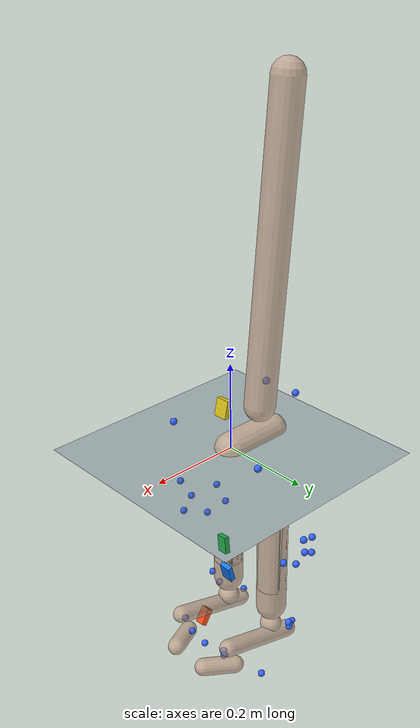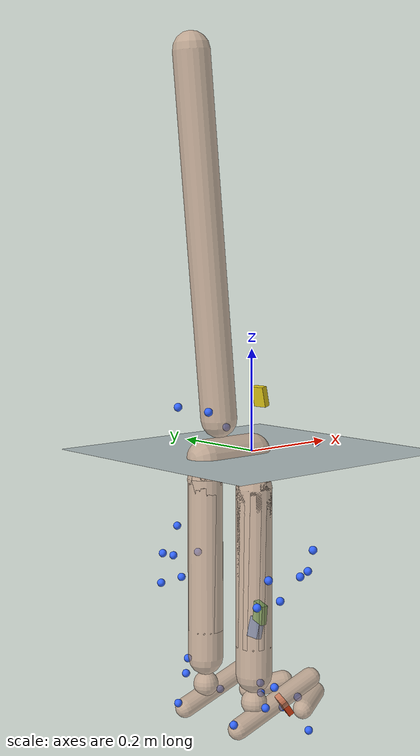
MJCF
<mujoco model="AB28">
  <compiler angle="radian" autolimits="true"/>
  <option timestep="0.005" gravity="0 0 -9.81"><flag contact="disable"/></option>
  <visual><global offwidth="1280" offheight="720"/></visual>
  <default><joint limited="false" damping="0"/><geom contype="0" conaffinity="0"/></default>
  <asset>
    <texture name="grid" type="2d" builtin="checker" rgb1="0.2 0.3 0.4" rgb2="0.3 0.4 0.5" width="512" height="512"/>
    <material name="grid" texture="grid" texrepeat="2 2" texuniform="true"/>
    <material name="skin" rgba="0.8 0.65 0.55 0.7"/>
  </asset>
  <worldbody>
    <light pos="0 0 4" dir="0 0 -1"/>
    <geom name="floor" type="plane" size="0 0 0.05" material="grid"/>
    <body name="pelvis" pos="0 0 0" quat="1 0 0 0">
      <joint name="pelvis_tx" type="slide" axis="1 0 0"/>
      <joint name="pelvis_ty" type="slide" axis="0 0 1"/>
      <joint name="pelvis_tz" type="slide" axis="0 -1 0"/>
      <joint name="pelvis_tilt" type="hinge" axis="0 -1 0"/>
      <joint name="pelvis_list" type="hinge" axis="1 0 0"/>
      <joint name="pelvis_rotation" type="hinge" axis="0 0 1"/>
      <inertial pos="-0.060459257 0 0" mass="10.3627" diaginertia="0.10362728 0.10362728 0.10362728"/>
      <geom type="capsule" fromto="0 0 0 -0.12091851 0 0" size="0.035" material="skin" mass="0"/>
      <site name="m_R_ASIS" pos="0.045494948 -0.13175383 0.027740392" size="0.008" rgba="0.2 0.4 1 1" group="2"/>
      <site name="m_L_ASIS" pos="0.046324617 0.12866539 0.028376879" size="0.008" rgba="0.2 0.4 1 1" group="2"/>
      <site name="m_L_PSIS" pos="-0.1499783 0.044557022 0.094452303" size="0.008" rgba="0.2 0.4 1 1" group="2"/>
      <site name="m_R_PSIS" pos="-0.14623649 -0.040033967 0.092877618" size="0.008" rgba="0.2 0.4 1 1" group="2"/>
      <body name="femur_r" pos="-0.060459257 -0.071405204 -0.056525557" quat="1 0 0 0">
        <joint name="hip_flexion_r" type="hinge" axis="0 -1 0"/>
        <joint name="hip_adduction_r" type="hinge" axis="1 0 0"/>
        <joint name="hip_rotation_r" type="hinge" axis="0 0 1"/>
        <inertial pos="0 0 -0.15340206" mass="8.18442" diaginertia="0.081844173 0.081844173 0.081844173"/>
        <geom type="capsule" fromto="0 0 0 0 0 -0.30680412" size="0.035" material="skin" mass="0"/>
        <site name="m_R_Thigh_Upper" pos="0.05776982 -0.1007557 -0.11153443" size="0.008" rgba="0.2 0.4 1 1" group="2"/>
        <site name="m_R_Thigh_Front" pos="0.082450817 -0.062730026 -0.16361164" size="0.008" rgba="0.2 0.4 1 1" group="2"/>
        <site name="m_R_Thigh_Rear" pos="0.032760071 -0.092161246 -0.15989025" size="0.008" rgba="0.2 0.4 1 1" group="2"/>
        <site name="m_R_Knee_Lat" pos="0.0043800552 -0.05269609 -0.37766919" size="0.008" rgba="0.2 0.4 1 1" group="2"/>
        <site name="imu_thigh" type="box" size="0.02 0.015 0.006" pos="0.05179996 0.051010766 -0.29322556" quat="0.61704131 0.022153068 0.78657314 -0.0084835407" rgba="0.1 0.5 1 1" group="1"/>
        <body name="tibia_r" pos="0 0 0" quat="1 0 0 0">
          <joint name="knee_r_translation1" type="slide" axis="1 0 0"/>
          <joint name="knee_r_translation2" type="slide" axis="0 0 1"/>
          <joint name="knee_angle_r" type="hinge" axis="0 -1 0"/>
          <inertial pos="0 0 -0.18179033" mass="3.26228" diaginertia="0.032622753 0.032622753 0.032622753"/>
          <geom type="capsule" fromto="0 0 0 0 0 -0.36358066" size="0.035" material="skin" mass="0"/>
          <site name="m_R_Shank_Upper" pos="-0.038563113 -0.081535494 -0.15673286" size="0.008" rgba="0.2 0.4 1 1" group="2"/>
          <site name="m_R_Shank_Front" pos="0.006359711 -0.065851534 -0.20740432" size="0.008" rgba="0.2 0.4 1 1" group="2"/>
          <site name="m_R_Shank_Rear" pos="-0.056847113 -0.070249825 -0.20714992" size="0.008" rgba="0.2 0.4 1 1" group="2"/>
          <site name="m_R_Ankle_Lat" pos="-0.012361262 -0.045905728 -0.41584314" size="0.008" rgba="0.2 0.4 1 1" group="2"/>
          <site name="imu_shank" type="box" size="0.02 0.015 0.006" pos="0.024657005 0.0094752569 -0.24911238" quat="0.72532161 0.12686158 0.6765308 0.01098984" rgba="0.1 0.8 0.2 1" group="1"/>
          <body name="talus_r" pos="0 0 -0.41869224" quat="1 0 0 0">
            <joint name="ankle_angle_r" type="hinge" axis="-0.10501355 -0.97912632 -0.17402245"/>
            <inertial pos="0 0 0" mass="0.0879912" diaginertia="0.00087991241 0.00087991241 0.00087991241"/>
            <geom type="sphere" size="0.025" material="skin" mass="0"/>
            <body name="calcn_r" pos="-0.047487489 -0.0077117268 -0.040846836" quat="1 0 0 0">
              <joint name="subtalar_angle_r" type="hinge" axis="0.78717961 0.12094949 0.60474746"/>
              <inertial pos="0.096134135 0 0.028840241" mass="1.09989" diaginertia="0.010998905 0.010998905 0.010998905"/>
              <geom type="capsule" fromto="0 0 0 0.19226827 0 0.057680481" size="0.02" material="skin" mass="0"/>
              <site name="m_R_Heel" pos="-0.01549349 -0.004412373 0.013531303" size="0.008" rgba="0.2 0.4 1 1" group="2"/>
              <site name="m_R_Toe_Lat" pos="0.13555577 -0.054048505 -0.02182151" size="0.008" rgba="0.2 0.4 1 1" group="2"/>
              <site name="m_R_Toe_Med" pos="0.16766697 0.052636777 -0.012152741" size="0.008" rgba="0.2 0.4 1 1" group="2"/>
              <site name="m_R_Toe_Tip" pos="0.18080904 0.022724583 0.013912831" size="0.008" rgba="0.2 0.4 1 1" group="2"/>
              <site name="imu_foot" type="box" size="0.02 0.015 0.006" pos="0.12556253 0.0042107203 0.016345775" quat="0.88451054 0.18351678 0.4282086 -0.024496801" rgba="1 0.3 0.1 1" group="1"/>
              <body name="toes_r" pos="0.17188783 -0.0010382487 -0.0019226827" quat="1 0 0 0">
                <joint name="mtp_angle_r" type="hinge" axis="-0.5809544 -0.81393611 0"/>
                <inertial pos="0.033262411 0.016823474 0.0057680481" mass="0.190589" diaginertia="0.0019058903 0.0019058903 0.0019058903"/>
                <geom type="capsule" fromto="0 0 0 0.066524822 0.033646947 0.011536096" size="0.02" material="skin" mass="0"/>
              </body>
            </body>
          </body>
        </body>
      </body>
      <body name="femur_l" pos="-0.060459257 0.071405204 -0.056525557" quat="1 0 0 0">
        <joint name="hip_flexion_l" type="hinge" axis="0 -1 0"/>
        <joint name="hip_adduction_l" type="hinge" axis="-1 0 0"/>
        <joint name="hip_rotation_l" type="hinge" axis="0 0 -1"/>
        <inertial pos="0 0 -0.15340206" mass="8.18442" diaginertia="0.081844173 0.081844173 0.081844173"/>
        <geom type="capsule" fromto="0 0 0 0 0 -0.30680412" size="0.035" material="skin" mass="0"/>
        <site name="m_L_Thigh_Upper" pos="0.014077366 0.10535352 -0.11509605" size="0.008" rgba="0.2 0.4 1 1" group="2"/>
        <site name="m_L_Thigh_Front" pos="0.04878159 0.081123076 -0.17137662" size="0.008" rgba="0.2 0.4 1 1" group="2"/>
        <site name="m_L_Thigh_Rear" pos="-0.010205452 0.088172336 -0.17017062" size="0.008" rgba="0.2 0.4 1 1" group="2"/>
        <site name="m_L_Knee_Lat" pos="0.0015345106 0.057933929 -0.38101771" size="0.008" rgba="0.2 0.4 1 1" group="2"/>
        <body name="tibia_l" pos="0 0 0" quat="1 0 0 0">
          <joint name="knee_l_translation1" type="slide" axis="1 0 0"/>
          <joint name="knee_l_translation2" type="slide" axis="0 0 1"/>
          <joint name="knee_angle_l" type="hinge" axis="0 -1 0"/>
          <inertial pos="0 0 -0.18179033" mass="3.26228" diaginertia="0.032622753 0.032622753 0.032622753"/>
          <geom type="capsule" fromto="0 0 0 0 0 -0.36358066" size="0.035" material="skin" mass="0"/>
          <site name="m_L_Shank_Upper" pos="-0.048947295 0.073997058 -0.15687193" size="0.008" rgba="0.2 0.4 1 1" group="2"/>
          <site name="m_L_Shank_Front" pos="-0.0060465803 0.067662956 -0.21187034" size="0.008" rgba="0.2 0.4 1 1" group="2"/>
          <site name="m_L_Shank_Rear" pos="-0.062789575 0.062421382 -0.21261774" size="0.008" rgba="0.2 0.4 1 1" group="2"/>
          <site name="m_L_Ankle_Lat" pos="-0.011989957 0.047780272 -0.40711113" size="0.008" rgba="0.2 0.4 1 1" group="2"/>
          <body name="talus_l" pos="0 0 -0.41869224" quat="1 0 0 0">
            <joint name="ankle_angle_l" type="hinge" axis="0.10501355 -0.97912632 0.17402245"/>
            <inertial pos="0 0 0" mass="0.0879912" diaginertia="0.00087991241 0.00087991241 0.00087991241"/>
            <geom type="sphere" size="0.025" material="skin" mass="0"/>
            <body name="calcn_l" pos="-0.047487489 0.0077117268 -0.040846836" quat="1 0 0 0">
              <joint name="subtalar_angle_l" type="hinge" axis="-0.78717961 0.12094949 -0.60474746"/>
              <inertial pos="0.096134135 0 0.028840241" mass="1.09989" diaginertia="0.010998905 0.010998905 0.010998905"/>
              <geom type="capsule" fromto="0 0 0 0.19226827 0 0.057680481" size="0.02" material="skin" mass="0"/>
              <site name="m_L_Heel" pos="-0.016715083 0.001319812 0.012914354" size="0.008" rgba="0.2 0.4 1 1" group="2"/>
              <site name="m_L_Toe_Lat" pos="0.14239711 0.057466211 -0.010759494" size="0.008" rgba="0.2 0.4 1 1" group="2"/>
              <site name="m_L_Toe_Med" pos="0.16497557 -0.04415497 0.0026397667" size="0.008" rgba="0.2 0.4 1 1" group="2"/>
              <site name="m_L_Toe_Tip" pos="0.18187932 -0.024040832 0.014190985" size="0.008" rgba="0.2 0.4 1 1" group="2"/>
              <body name="toes_l" pos="0.17188783 0.0010382487 -0.0019226827" quat="1 0 0 0">
                <joint name="mtp_angle_l" type="hinge" axis="0.5809544 -0.81393611 0"/>
                <inertial pos="0.033262411 -0.016823474 0.0057680481" mass="0.190589" diaginertia="0.0019058903 0.0019058903 0.0019058903"/>
                <geom type="capsule" fromto="0 0 0 0.066524822 -0.033646947 0.011536096" size="0.02" material="skin" mass="0"/>
              </body>
            </body>
          </body>
        </body>
      </body>
      <body name="torso" pos="-0.086113821 0 0.0696949" quat="1 0 0 0">
        <joint name="lumbar_extension" type="hinge" axis="0 -1 0"/>
        <joint name="lumbar_bending" type="hinge" axis="1 0 0"/>
        <joint name="lumbar_rotation" type="hinge" axis="0 0 1"/>
        <inertial pos="-0.032027103 0 0.34162243" mass="30.1252" diaginertia="0.30125209 0.30125209 0.30125209"/>
        <geom type="capsule" fromto="0 0 0 -0.064054205 0 0.68324485" size="0.035" material="skin" mass="0"/>
        <site name="imu_trunk" type="box" size="0.02 0.015 0.006" pos="0.10757595 -0.0003680528 0.036181226" quat="0.77833673 -0.016704147 0.62742316 0.015908737" rgba="0.9 0.8 0.1 1" group="1"/>
      </body>
    </body>
  </worldbody>
  <sensor>
<accelerometer name="imu_foot_acc" site="imu_foot"/>
<gyro name="imu_foot_gyr" site="imu_foot"/>
<accelerometer name="imu_shank_acc" site="imu_shank"/>
<gyro name="imu_shank_gyr" site="imu_shank"/>
<accelerometer name="imu_thigh_acc" site="imu_thigh"/>
<gyro name="imu_thigh_gyr" site="imu_thigh"/>
<accelerometer name="imu_trunk_acc" site="imu_trunk"/>
<gyro name="imu_trunk_gyr" site="imu_trunk"/>
</sensor>
</mujoco>
